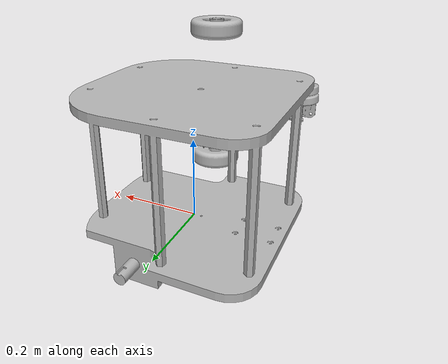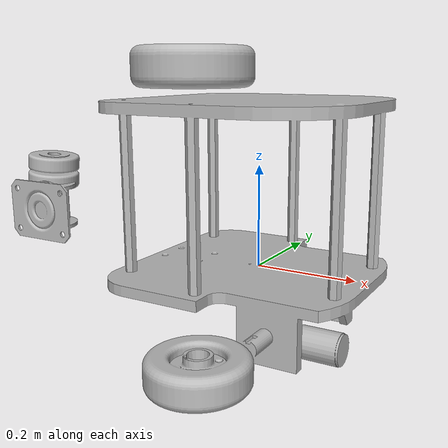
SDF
<sdf version='1.6'>
  <model name='Robor'>
    <link name='Chassis'>
      <pose frame=''>0 0 0 0 -0 0</pose>
      <inertial>
        <pose frame=''>0.034596 -0.5878 0.17916 0 -0 0</pose>
        <mass>10.436</mass>
        <inertia>
          <ixx>0.1</ixx>
          <ixy>0</ixy>
          <ixz>0</ixz>
          <iyy>0.1</iyy>
          <iyz>0</iyz>
          <izz>0.1</izz>
        </inertia>
      </inertial>
      <collision name='Chassis_collision'>
        <pose frame=''>0 0 0 0 -0 0</pose>
        <geometry>
          <mesh>
            <scale>1 1 1</scale>
            <uri>model://Robor/meshes/Chassis.STL</uri>
          </mesh>
        </geometry>
      </collision>
      <visual name='Chassis_visual'>
        <pose frame=''>0 0 0 0 -0 0</pose>
        <geometry>
          <mesh>
            <scale>1 1 1</scale>
            <uri>model://Robor/meshes/Chassis.STL</uri>
          </mesh>
        </geometry>
      </visual>
    </link>
    <link name='Castor Frame'>
      <pose frame=''>-0.13379 -0.42645 0.17915 1.5708 -0 0</pose>
      <inertial>
        <pose frame=''>-0.006153 4e-06 -0.025758 0 -0 0</pose>
        <mass>0.12593</mass>
        <inertia>
          <ixx>0.1</ixx>
          <ixy>0</ixy>
          <ixz>0</ixz>
          <iyy>0.1</iyy>
          <iyz>0</iyz>
          <izz>0.1</izz>
        </inertia>
      </inertial>
      <collision name='Castor Frame_collision'>
        <pose frame=''>0 0 0 0 -0 0</pose>
        <geometry>
          <mesh>
            <scale>1 1 1</scale>
            <uri>model://Robor/meshes/Castor Frame.STL</uri>
          </mesh>
        </geometry>
      </collision>
      <visual name='Castor Frame_visual'>
        <pose frame=''>0 0 0 0 -0 0</pose>
        <geometry>
          <mesh>
            <scale>1 1 1</scale>
            <uri>model://Robor/meshes/Castor Frame.STL</uri>
          </mesh>
        </geometry>
      </visual>
    </link>
    <joint name='CWF' type='revolute'>
      <child>Castor Frame</child>
      <parent>Chassis</parent>
      <axis>
        <xyz>0 -1 -4e-06</xyz>
        <limit>
          <lower>0</lower>
          <upper>0</upper>
          <effort>0</effort>
          <velocity>0</velocity>
        </limit>
        <dynamics>
          <spring_reference>0</spring_reference>
          <spring_stiffness>0</spring_stiffness>
        </dynamics>
        <use_parent_model_frame>1</use_parent_model_frame>
      </axis>
    </joint>
    <link name='Castor Wheel'>
      <pose frame=''>-0.169474 -0.360945 0.203906 1.5708 0.10274 0</pose>
      <inertial>
        <pose frame=''>0.016283 -0.023214 -0.001995 0 -0 0</pose>
        <mass>0.18068</mass>
        <inertia>
          <ixx>0.1</ixx>
          <ixy>0</ixy>
          <ixz>0</ixz>
          <iyy>0.1</iyy>
          <iyz>0</iyz>
          <izz>0.1</izz>
        </inertia>
      </inertial>
      <collision name='Castor Wheel_collision'>
        <pose frame=''>0 0 0 0 -0 0</pose>
        <geometry>
          <mesh>
            <scale>1 1 1</scale>
            <uri>model://Robor/meshes/Castor Wheel.STL</uri>
          </mesh>
        </geometry>
      </collision>
      <visual name='Castor Wheel_visual'>
        <pose frame=''>0 0 0 0 -0 0</pose>
        <geometry>
          <mesh>
            <scale>1 1 1</scale>
            <uri>model://Robor/meshes/Castor Wheel.STL</uri>
          </mesh>
        </geometry>
      </visual>
    </link>
    <joint name='CWW' type='revolute'>
      <child>Castor Wheel</child>
      <parent>Castor Frame</parent>
      <axis>
        <xyz>0 4e-06 -1</xyz>
        <limit>
          <lower>-1e+16</lower>
          <upper>1e+16</upper>
        </limit>
        <dynamics>
          <spring_reference>0</spring_reference>
          <spring_stiffness>0</spring_stiffness>
        </dynamics>
        <use_parent_model_frame>1</use_parent_model_frame>
      </axis>
    </joint>
    <link name='Left Wheel'>
      <pose frame=''>0.11841 -0.39765 0.35775 1.5708 -0 -0.37673</pose>
      <inertial>
        <pose frame=''>-1.5e-05 0.025016 1.7e-05 0 -0 0</pose>
        <mass>0.72827</mass>
        <inertia>
          <ixx>0.1</ixx>
          <ixy>0</ixy>
          <ixz>0</ixz>
          <iyy>0.1</iyy>
          <iyz>0</iyz>
          <izz>0.1</izz>
        </inertia>
      </inertial>
      <collision name='Left Wheel_collision'>
        <pose frame=''>0 0 0 0 -0 0</pose>
        <geometry>
          <mesh>
            <scale>1 1 1</scale>
            <uri>model://Robor/meshes/Left Wheel.STL</uri>
          </mesh>
        </geometry>
      </collision>
      <visual name='Left Wheel_visual'>
        <pose frame=''>0 0 0 0 -0 0</pose>
        <geometry>
          <mesh>
            <scale>1 1 1</scale>
            <uri>model://Robor/meshes/Left Wheel.STL</uri>
          </mesh>
        </geometry>
      </visual>
    </link>
    <joint name='LW' type='revolute'>
      <child>Left Wheel</child>
      <parent>Chassis</parent>
      <axis>
        <xyz>-1e-06 -3e-06 1</xyz>
        <limit>
          <lower>-1e+16</lower>
          <upper>1e+16</upper>
        </limit>
        <dynamics>
          <damping>1</damping>
          <friction>0.01</friction>
          <spring_reference>0</spring_reference>
          <spring_stiffness>0</spring_stiffness>
        </dynamics>
        <use_parent_model_frame>1</use_parent_model_frame>
      </axis>
    </joint>
    <link name='Right Wheel'>
      <pose frame=''>0.11841 -0.39765 0 -1.5708 -0 0.78245</pose>
      <inertial>
        <pose frame=''>2.2e-05 0.024462 3e-06 0 -0 0</pose>
        <mass>0.72827</mass>
        <inertia>
          <ixx>0.1</ixx>
          <ixy>0</ixy>
          <ixz>0</ixz>
          <iyy>0.1</iyy>
          <iyz>0</iyz>
          <izz>0.1</izz>
        </inertia>
      </inertial>
      <collision name='Right Wheel_collision'>
        <pose frame=''>0 0 0 0 -0 0</pose>
        <geometry>
          <mesh>
            <scale>1 1 1</scale>
            <uri>model://Robor/meshes/Right Wheel.STL</uri>
          </mesh>
        </geometry>
      </collision>
      <visual name='Right Wheel_visual'>
        <pose frame=''>0 0 0 0 -0 0</pose>
        <geometry>
          <mesh>
            <scale>1 1 1</scale>
            <uri>model://Robor/meshes/Right Wheel.STL</uri>
          </mesh>
        </geometry>
      </visual>
    </link>
    <joint name='RW' type='revolute'>
      <child>Right Wheel</child>
      <parent>Chassis</parent>
      <axis>
        <xyz>-3e-06 3e-06 1</xyz>
        <limit>
          <lower>-1e+16</lower>
          <upper>1e+16</upper>
        </limit>
        <dynamics>
          <damping>1</damping>
          <friction>0.01</friction>
          <spring_reference>0</spring_reference>
          <spring_stiffness>0</spring_stiffness>
        </dynamics>
        <use_parent_model_frame>1</use_parent_model_frame>
      </axis>
    </joint>
    <static>0</static>
    <plugin name='differential_drive_controller' filename='libgazebo_ros_diff_drive.so'>
      <legacyMode>0</legacyMode>
      <alwaysOn>1</alwaysOn>
      <updateRate>10</updateRate>
      <leftJoint>LW</leftJoint>
      <rightJoint>RW</rightJoint>
      <wheelSeparation>0.407</wheelSeparation>
      <wheelDiameter>0.153</wheelDiameter>
      <torque>10</torque>
      <commandTopic>cmd_vel</commandTopic>
      <odometryTopic>odom</odometryTopic>
      <odometryFrame>odom</odometryFrame>
      <robotBaseFrame>Chassis</robotBaseFrame>
      <publishWheelTF>0</publishWheelTF>
      <publishWheelJointState>0</publishWheelJointState>
      <rosDebugLevel>na</rosDebugLevel>
      <wheelAcceleration>0</wheelAcceleration>
      <wheelTorque>5</wheelTorque>
      <odometrySource>world</odometrySource>
      <publishTf>1</publishTf>
      <publishOdomTF>1</publishOdomTF>
    </plugin>
  </model>
</sdf>
